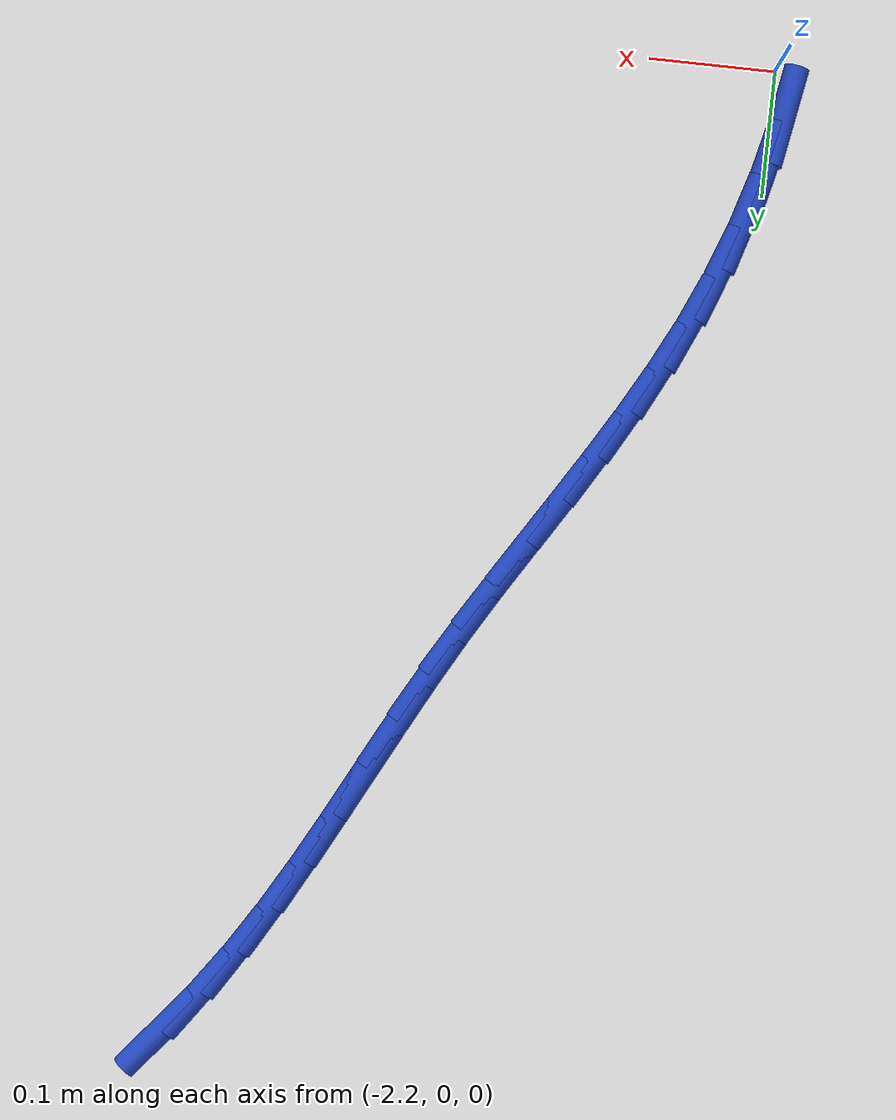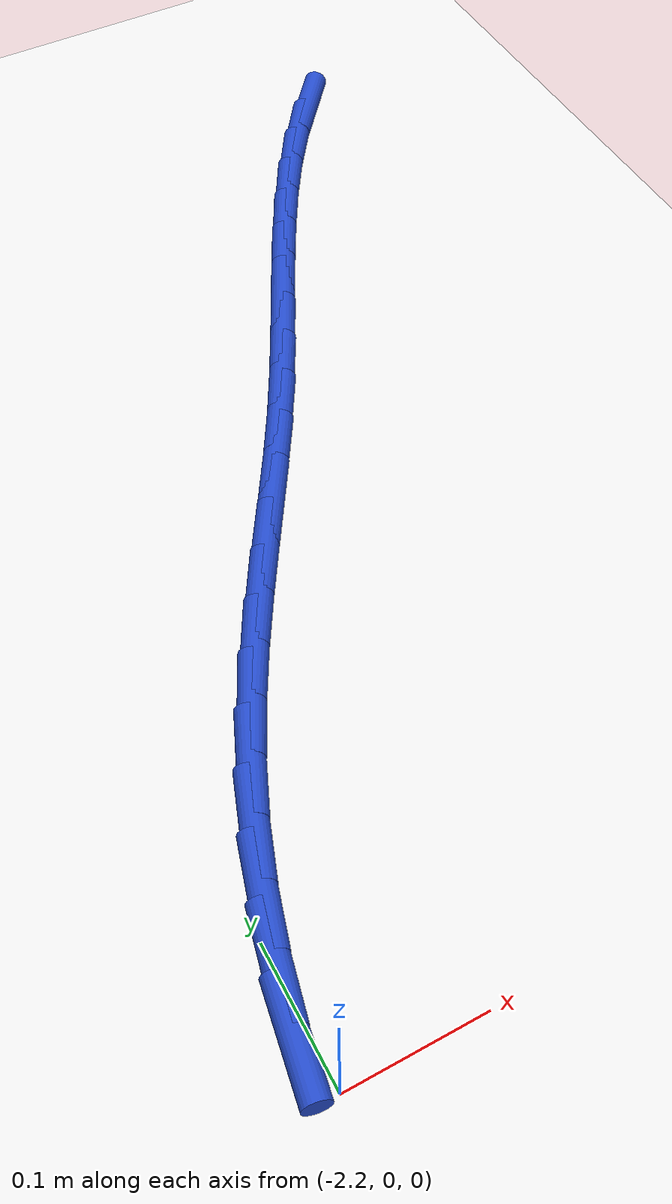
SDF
<sdf version="1.6">
 <world name="default">
  <model name="ground_plane">
   <static>1</static>
   <link name="link">
    <collision name="collision">
     <geometry><plane><normal>0 0 1</normal><size>100 100</size></plane></geometry>
     <surface><friction><ode><mu>100</mu><mu2>50</mu2></ode></friction></surface>
    </collision>
    <visual name="visual">
     <cast_shadows>0</cast_shadows>
     <geometry><plane><normal>0 0 1</normal><size>100 100</size></plane></geometry>
     <material>
      <script><uri>file://media/materials/scripts/gazebo.material</uri><name>Gazebo/WhiteGlow</name></script>
     </material>
    </visual>
   </link>
  </model>
  <model name="line">
   <link name="link_59">
    <pose>-1.7985725220873552 0.8049283406907304 0.01 0 1.57 0.8880378276672072</pose>
    <collision name="collision">
     <geometry><cylinder><radius>0.01</radius><length>0.08</length></cylinder></geometry>
    </collision>
    <visual name="visual">
     <material>
      <script><name>Gazebo/Blue</name><uri>file://media/materials/scripts/gazebo.material</uri></script>
     </material>
     <geometry><cylinder><radius>0.01</radius><length>0.08</length></cylinder></geometry>
    </visual>
   </link>
   <link name="link_60">
    <pose>-1.8256741652945834 0.7716025764746027 0.01 0 1.57 0.9532823478440139</pose>
    <collision name="collision">
     <geometry><cylinder><radius>0.01</radius><length>0.08</length></cylinder></geometry>
    </collision>
    <visual name="visual">
     <material>
      <script><name>Gazebo/Blue</name><uri>file://media/materials/scripts/gazebo.material</uri></script>
     </material>
     <geometry><cylinder><radius>0.01</radius><length>0.08</length></cylinder></geometry>
    </visual>
   </link>
   <link name="link_61">
    <pose>-1.8505955649050656 0.7365100496553411 0.01 0 1.57 1.006463212726291</pose>
    <collision name="collision">
     <geometry><cylinder><radius>0.01</radius><length>0.08</length></cylinder></geometry>
    </collision>
    <visual name="visual">
     <material>
      <script><name>Gazebo/Blue</name><uri>file://media/materials/scripts/gazebo.material</uri></script>
     </material>
     <geometry><cylinder><radius>0.01</radius><length>0.08</length></cylinder></geometry>
    </visual>
   </link>
   <link name="link_62">
    <pose>-1.873728036955021 0.699965994453203 0.01 0 1.57 1.0467356057580637</pose>
    <collision name="collision">
     <geometry><cylinder><radius>0.01</radius><length>0.08</length></cylinder></geometry>
    </collision>
    <visual name="visual">
     <material>
      <script><name>Gazebo/Blue</name><uri>file://media/materials/scripts/gazebo.material</uri></script>
     </material>
     <geometry><cylinder><radius>0.01</radius><length>0.08</length></cylinder></geometry>
    </visual>
   </link>
   <link name="link_63">
    <pose>-1.8954939077282846 0.662306586830986 0.01 0 1.57 1.0743595727182282</pose>
    <collision name="collision">
     <geometry><cylinder><radius>0.01</radius><length>0.08</length></cylinder></geometry>
    </collision>
    <visual name="visual">
     <material>
      <script><name>Gazebo/Blue</name><uri>file://media/materials/scripts/gazebo.material</uri></script>
     </material>
     <geometry><cylinder><radius>0.01</radius><length>0.08</length></cylinder></geometry>
    </visual>
   </link>
   <link name="link_64">
    <pose>-1.91631550350869 0.6238680027514886 0.01 0 1.57 1.0896340880028401</pose>
    <collision name="collision">
     <geometry><cylinder><radius>0.01</radius><length>0.08</length></cylinder></geometry>
    </collision>
    <visual name="visual">
     <material>
      <script><name>Gazebo/Blue</name><uri>file://media/materials/scripts/gazebo.material</uri></script>
     </material>
     <geometry><cylinder><radius>0.01</radius><length>0.08</length></cylinder></geometry>
    </visual>
   </link>
   <link name="link_65">
    <pose>-1.9366151505800715 0.5849864181775083 0.01 0 1.57 1.0927711632133499</pose>
    <collision name="collision">
     <geometry><cylinder><radius>0.01</radius><length>0.08</length></cylinder></geometry>
    </collision>
    <visual name="visual">
     <material>
      <script><name>Gazebo/Blue</name><uri>file://media/materials/scripts/gazebo.material</uri></script>
     </material>
     <geometry><cylinder><radius>0.01</radius><length>0.08</length></cylinder></geometry>
    </visual>
   </link>
   <link name="link_66">
    <pose>-1.9568151752262648 0.5459980090718431 0.01 0 1.57 1.0838320582885155</pose>
    <collision name="collision">
     <geometry><cylinder><radius>0.01</radius><length>0.08</length></cylinder></geometry>
    </collision>
    <visual name="visual">
     <material>
      <script><name>Gazebo/Blue</name><uri>file://media/materials/scripts/gazebo.material</uri></script>
     </material>
     <geometry><cylinder><radius>0.01</radius><length>0.08</length></cylinder></geometry>
    </visual>
   </link>
   <link name="link_67">
    <pose>-1.9773379037311036 0.5072389513972912 0.01 0 1.57 1.0627174661478553</pose>
    <collision name="collision">
     <geometry><cylinder><radius>0.01</radius><length>0.08</length></cylinder></geometry>
    </collision>
    <visual name="visual">
     <material>
      <script><name>Gazebo/Blue</name><uri>file://media/materials/scripts/gazebo.material</uri></script>
     </material>
     <geometry><cylinder><radius>0.01</radius><length>0.08</length></cylinder></geometry>
    </visual>
   </link>
   <link name="link_68">
    <pose>-1.998605589356477 0.4690453651865532 0.01 0 1.57 1.0343805173795573</pose>
    <collision name="collision">
     <geometry><cylinder><radius>0.01</radius><length>0.08</length></cylinder></geometry>
    </collision>
    <visual name="visual">
     <material>
      <script><name>Gazebo/Blue</name><uri>file://media/materials/scripts/gazebo.material</uri></script>
     </material>
     <geometry><cylinder><radius>0.01</radius><length>0.08</length></cylinder></geometry>
    </visual>
   </link>
   <link name="link_69">
    <pose>-2.0208602811884546 0.4316153457052754 0.01 0 1.57 1.0151057497956326</pose>
    <collision name="collision">
     <geometry><cylinder><radius>0.01</radius><length>0.08</length></cylinder></geometry>
    </collision>
    <visual name="visual">
     <material>
      <script><name>Gazebo/Blue</name><uri>file://media/materials/scripts/gazebo.material</uri></script>
     </material>
     <geometry><cylinder><radius>0.01</radius><length>0.08</length></cylinder></geometry>
    </visual>
   </link>
   <link name="link_70">
    <pose>-2.0437759475881565 0.3947118750516446 0.01 0 1.57 1.0082530462812844</pose>
    <collision name="collision">
     <geometry><cylinder><radius>0.01</radius><length>0.08</length></cylinder></geometry>
    </collision>
    <visual name="visual">
     <material>
      <script><name>Gazebo/Blue</name><uri>file://media/materials/scripts/gazebo.material</uri></script>
     </material>
     <geometry><cylinder><radius>0.01</radius><length>0.08</length></cylinder></geometry>
    </visual>
   </link>
   <link name="link_71">
    <pose>-2.066914893659993 0.35801240847672416 0.01 0 1.57 1.013892625373761</pose>
    <collision name="collision">
     <geometry><cylinder><radius>0.01</radius><length>0.08</length></cylinder></geometry>
    </collision>
    <visual name="visual">
     <material>
      <script><name>Gazebo/Blue</name><uri>file://media/materials/scripts/gazebo.material</uri></script>
     </material>
     <geometry><cylinder><radius>0.01</radius><length>0.08</length></cylinder></geometry>
    </visual>
   </link>
   <link name="link_72">
    <pose>-2.08983942450837 0.3211944012315787 0.01 0 1.57 1.0320170995414375</pose>
    <collision name="collision">
     <geometry><cylinder><radius>0.01</radius><length>0.08</length></cylinder></geometry>
    </collision>
    <visual name="visual">
     <material>
      <script><name>Gazebo/Blue</name><uri>file://media/materials/scripts/gazebo.material</uri></script>
     </material>
     <geometry><cylinder><radius>0.01</radius><length>0.08</length></cylinder></geometry>
    </visual>
   </link>
   <link name="link_73">
    <pose>-2.1121118452376972 0.283935308567271 0.01 0 1.57 1.0625152599636731</pose>
    <collision name="collision">
     <geometry><cylinder><radius>0.01</radius><length>0.08</length></cylinder></geometry>
    </collision>
    <visual name="visual">
     <material>
      <script><name>Gazebo/Blue</name><uri>file://media/materials/scripts/gazebo.material</uri></script>
     </material>
     <geometry><cylinder><radius>0.01</radius><length>0.08</length></cylinder></geometry>
    </visual>
   </link>
   <link name="link_74">
    <pose>-2.133294460952383 0.24591258573486557 0.01 0 1.57 1.105091625869532</pose>
    <collision name="collision">
     <geometry><cylinder><radius>0.01</radius><length>0.08</length></cylinder></geometry>
    </collision>
    <visual name="visual">
     <material>
      <script><name>Gazebo/Blue</name><uri>file://media/materials/scripts/gazebo.material</uri></script>
     </material>
     <geometry><cylinder><radius>0.01</radius><length>0.08</length></cylinder></geometry>
    </visual>
   </link>
   <link name="link_75">
    <pose>-2.1529495767568356 0.2068036879854258 0.01 0 1.57 1.1591406686309906</pose>
    <collision name="collision">
     <geometry><cylinder><radius>0.01</radius><length>0.08</length></cylinder></geometry>
    </collision>
    <visual name="visual">
     <material>
      <script><name>Gazebo/Blue</name><uri>file://media/materials/scripts/gazebo.material</uri></script>
     </material>
     <geometry><cylinder><radius>0.01</radius><length>0.08</length></cylinder></geometry>
    </visual>
   </link>
   <link name="link_76">
    <pose>-2.1706395621715195 0.16628618190273534 0.01 0 1.57 1.2208725332978312</pose>
    <collision name="collision">
     <geometry><cylinder><radius>0.01</radius><length>0.08</length></cylinder></geometry>
    </collision>
    <visual name="visual">
     <material>
      <script><name>Gazebo/Blue</name><uri>file://media/materials/scripts/gazebo.material</uri></script>
     </material>
     <geometry><cylinder><radius>0.01</radius><length>0.08</length></cylinder></geometry>
    </visual>
   </link>
   <link name="link_77">
    <pose>-2.1860071493092126 0.12417652779787522 0.01 0 1.57 1.2818208759926466</pose>
    <collision name="collision">
     <geometry><cylinder><radius>0.01</radius><length>0.08</length></cylinder></geometry>
    </collision>
    <visual name="visual">
     <material>
      <script><name>Gazebo/Blue</name><uri>file://media/materials/scripts/gazebo.material</uri></script>
     </material>
     <geometry><cylinder><radius>0.01</radius><length>0.08</length></cylinder></geometry>
    </visual>
   </link>
   <link name="link_78">
    <pose>-2.1989322662786344 0.0807011408505647 0.01 0 1.57 1.3412750732800531</pose>
    <collision name="collision">
     <geometry><cylinder><radius>0.01</radius><length>0.08</length></cylinder></geometry>
    </collision>
    <visual name="visual">
     <material>
      <script><name>Gazebo/Blue</name><uri>file://media/materials/scripts/gazebo.material</uri></script>
     </material>
     <geometry><cylinder><radius>0.01</radius><length>0.08</length></cylinder></geometry>
    </visual>
   </link>
   <link name="link_79">
    <pose>-2.2093383902587376 0.03616170375629976 0.01 0 1.57 1.4000621397140474</pose>
    <collision name="collision">
     <geometry><cylinder><radius>0.01</radius><length>0.08</length></cylinder></geometry>
    </collision>
    <visual name="visual">
     <material>
      <script><name>Gazebo/Blue</name><uri>file://media/materials/scripts/gazebo.material</uri></script>
     </material>
     <geometry><cylinder><radius>0.01</radius><length>0.08</length></cylinder></geometry>
    </visual>
   </link>
  </model>
 </world>
</sdf>
